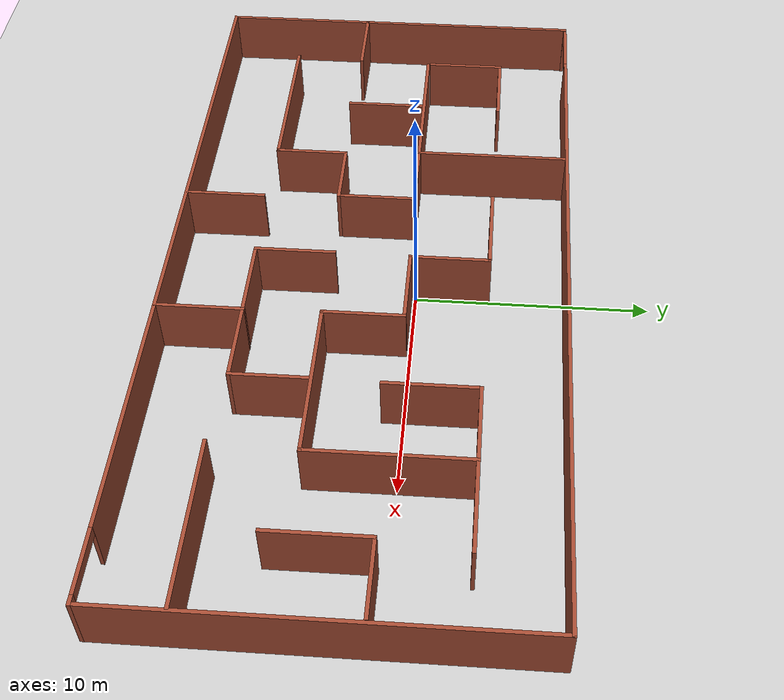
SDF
<sdf version="1.5">
 <world name="default">
  <light name="sun" type="directional">
   <pose>0 0 10 0 -0 0</pose>
   <diffuse>0.8 0.8 0.8 1</diffuse>
   <specular>0.2 0.2 0.2 1</specular>
   <attenuation>
    <range>1000</range>
    <constant>0.9</constant>
    <linear>0.01</linear>
    <quadratic>0.001</quadratic>
   </attenuation>
   <direction>-0.5 0.1 -0.9</direction>
  </light>
  <model name="ground_plane">
   <static>1</static>
   <link name="link">
    <collision name="collision">
     <geometry><plane><normal>0 0 1</normal><size>100 100</size></plane></geometry>
     <surface><friction><ode><mu>100</mu><mu2>50</mu2></ode></friction></surface>
    </collision>
    <visual name="visual">
     <cast_shadows>0</cast_shadows>
     <geometry><plane><normal>0 0 1</normal><size>100 100</size></plane></geometry>
     <material>
      <script><uri>file://media/materials/scripts/gazebo.material</uri><name>Gazebo/Grey</name></script>
     </material>
    </visual>
   </link>
  </model>
  <physics name="default_physics" default="0" type="ode">
   <max_step_size>0.001</max_step_size>
   <real_time_factor>1</real_time_factor>
   <real_time_update_rate>1000</real_time_update_rate>
   <gravity>0 0 -9.8</gravity>
   <magnetic_field>5.5645e-06 2.28758e-05 -4.23884e-05</magnetic_field>
  </physics>
  <scene><ambient>0.4 0.4 0.4 1</ambient><background>0.7 0.7 0.7 1</background><shadows>1</shadows></scene>
  <spherical_coordinates>
   <surface_model>EARTH_WGS84</surface_model>
   <latitude_deg>0</latitude_deg>
   <longitude_deg>0</longitude_deg>
   <elevation>0</elevation>
   <heading_deg>0</heading_deg>
  </spherical_coordinates>
  <model name="Simple_Maze">
   <pose>-0 -2 0 0 -0 0</pose>
   <link name="Wall_1">
    <collision name="Wall_1_Collision">
     <geometry><box><size>17 0.15 2.5</size></box></geometry>
     <pose>0 0 1.25 0 -0 0</pose>
    </collision>
    <visual name="Wall_1_Visual">
     <pose>0 0 1.25 0 -0 0</pose>
     <geometry><box><size>17 0.15 2.5</size></box></geometry>
     <material>
      <script><uri>file://media/materials/scripts/gazebo.material</uri><name>Gazebo/Bricks</name></script>
      <ambient>1 1 1 1</ambient>
     </material>
    </visual>
    <pose>16.8 -0 0 0 0 -1.5708</pose>
   </link>
   <link name="Wall_10">
    <collision name="Wall_10_Collision">
     <geometry><box><size>7.25 0.15 2.5</size></box></geometry>
     <pose>0 0 1.25 0 -0 0</pose>
    </collision>
    <visual name="Wall_10_Visual">
     <pose>0 0 1.25 0 -0 0</pose>
     <geometry><box><size>7.25 0.15 2.5</size></box></geometry>
     <material>
      <script><uri>file://media/materials/scripts/gazebo.material</uri><name>Gazebo/Bricks</name></script>
      <ambient>1 1 1 1</ambient>
     </material>
    </visual>
    <pose>-10.161 -4.76651 0 0 -0 3.14159</pose>
   </link>
   <link name="Wall_16">
    <collision name="Wall_16_Collision">
     <geometry><box><size>3.5 0.15 2.5</size></box></geometry>
     <pose>0 0 1.25 0 -0 0</pose>
    </collision>
    <visual name="Wall_16_Visual">
     <pose>0 0 1.25 0 -0 0</pose>
     <geometry><box><size>3.5 0.15 2.5</size></box></geometry>
     <material>
      <script><uri>file://media/materials/scripts/gazebo.material</uri><name>Gazebo/Bricks</name></script>
      <ambient>1 1 1 1</ambient>
     </material>
    </visual>
    <pose>-3.5354 -6.66942 0 0 -0 1.5708</pose>
   </link>
   <link name="Wall_19">
    <collision name="Wall_19_Collision">
     <geometry><box><size>3.25 0.15 2.5</size></box></geometry>
     <pose>0 0 1.25 0 -0 0</pose>
    </collision>
    <visual name="Wall_19_Visual">
     <pose>0 0 1.25 0 -0 0</pose>
     <geometry><box><size>3.25 0.15 2.5</size></box></geometry>
     <material>
      <script><uri>file://media/materials/scripts/gazebo.material</uri><name>Gazebo/Bricks</name></script>
      <ambient>1 1 1 1</ambient>
     </material>
    </visual>
    <pose>-15.1813 -1.62924 0 0 -0 0</pose>
   </link>
   <link name="Wall_2">
    <pose>0 -8.425 0 0 -0 3.14159</pose>
    <visual name="Wall_2_Visual_0">
     <pose>-16.667 0 1.25 0 -0 0</pose>
     <geometry><box><size>0.416079 0.15 2.5</size></box></geometry>
     <material>
      <script><uri>file://media/materials/scripts/gazebo.material</uri><name>Gazebo/Bricks</name></script>
      <ambient>1 1 1 1</ambient>
     </material>
    </visual>
    <collision name="Wall_2_Collision_0">
     <geometry><box><size>0.416079 0.15 2.5</size></box></geometry>
     <pose>-16.667 0 1.25 0 -0 0</pose>
    </collision>
    <visual name="Wall_2_Visual_1">
     <pose>1.52986 0 1.25 0 -0 0</pose>
     <geometry><box><size>30.6903 0.15 2.5</size></box></geometry>
     <material>
      <script><uri>file://media/materials/scripts/gazebo.material</uri><name>Gazebo/Bricks</name></script>
      <ambient>1 1 1 1</ambient>
     </material>
    </visual>
    <collision name="Wall_2_Collision_1">
     <geometry><box><size>30.6903 0.15 2.5</size></box></geometry>
     <pose>1.52986 0 1.25 0 -0 0</pose>
    </collision>
    <visual name="Wall_2_Visual_2">
     <pose>-15.1371 0 2.25 0 -0 0</pose>
     <geometry><box><size>2.64364 0.15 0.5</size></box></geometry>
     <material>
      <script><uri>file://media/materials/scripts/gazebo.material</uri><name>Gazebo/Bricks</name></script>
      <ambient>1 1 1 1</ambient>
     </material>
    </visual>
    <collision name="Wall_2_Collision_2">
     <geometry><box><size>2.64364 0.15 0.5</size></box></geometry>
     <pose>-15.1371 0 2.25 0 -0 0</pose>
    </collision>
   </link>
   <link name="Wall_21">
    <collision name="Wall_21_Collision">
     <geometry><box><size>3.5 0.15 2.5</size></box></geometry>
     <pose>0 0 1.25 0 -0 0</pose>
    </collision>
    <visual name="Wall_21_Visual">
     <pose>0 0 1.25 0 -0 0</pose>
     <geometry><box><size>3.5 0.15 2.5</size></box></geometry>
     <material>
      <script><uri>file://media/materials/scripts/gazebo.material</uri><name>Gazebo/Bricks</name></script>
      <ambient>1 1 1 1</ambient>
     </material>
    </visual>
    <pose>-11.8153 5.20589 0 0 -0 3.14159</pose>
   </link>
   <link name="Wall_22">
    <collision name="Wall_22_Collision">
     <geometry><box><size>3.5 0.15 2.5</size></box></geometry>
     <pose>0 0 1.25 0 -0 0</pose>
    </collision>
    <visual name="Wall_22_Visual">
     <pose>0 0 1.25 0 -0 0</pose>
     <geometry><box><size>3.5 0.15 2.5</size></box></geometry>
     <material>
      <script><uri>file://media/materials/scripts/gazebo.material</uri><name>Gazebo/Bricks</name></script>
      <ambient>1 1 1 1</ambient>
     </material>
    </visual>
    <pose>-13.4903 3.5309 0 0 0 -1.5708</pose>
   </link>
   <link name="Wall_24">
    <collision name="Wall_24_Collision">
     <geometry><box><size>6.75 0.15 2.5</size></box></geometry>
     <pose>0 0 1.25 0 -0 0</pose>
    </collision>
    <visual name="Wall_24_Visual">
     <pose>0 0 1.25 0 -0 0</pose>
     <geometry><box><size>6.75 0.15 2.5</size></box></geometry>
     <material>
      <script><uri>file://media/materials/scripts/gazebo.material</uri><name>Gazebo/Bricks</name></script>
      <ambient>1 1 1 1</ambient>
     </material>
    </visual>
    <pose>-10.161 1.68349 0 0 -0 3.14159</pose>
   </link>
   <link name="Wall_26">
    <collision name="Wall_26_Collision">
     <geometry><box><size>3.5 0.15 2.5</size></box></geometry>
     <pose>0 0 1.25 0 -0 0</pose>
    </collision>
    <visual name="Wall_26_Visual">
     <pose>0 0 1.25 0 -0 0</pose>
     <geometry><box><size>3.5 0.15 2.5</size></box></geometry>
     <material>
      <script><uri>file://media/materials/scripts/gazebo.material</uri><name>Gazebo/Bricks</name></script>
      <ambient>1 1 1 1</ambient>
     </material>
    </visual>
    <pose>-10.2217 -0.130783 0 0 0 -1.5708</pose>
   </link>
   <link name="Wall_29">
    <collision name="Wall_29_Collision">
     <geometry><box><size>4 0.15 2.5</size></box></geometry>
     <pose>0 0 1.25 0 -0 0</pose>
    </collision>
    <visual name="Wall_29_Visual">
     <pose>0 0 1.25 0 -0 0</pose>
     <geometry><box><size>4 0.15 2.5</size></box></geometry>
     <material>
      <script><uri>file://media/materials/scripts/gazebo.material</uri><name>Gazebo/Bricks</name></script>
      <ambient>1 1 1 1</ambient>
     </material>
    </visual>
    <pose>-2.1125 5.12452 0 0 -0 0</pose>
   </link>
   <link name="Wall_3">
    <collision name="Wall_3_Collision">
     <geometry><box><size>17 0.15 2.5</size></box></geometry>
     <pose>0 0 1.25 0 -0 0</pose>
    </collision>
    <visual name="Wall_3_Visual">
     <pose>0 0 1.25 0 -0 0</pose>
     <geometry><box><size>17 0.15 2.5</size></box></geometry>
     <material>
      <script><uri>file://media/materials/scripts/gazebo.material</uri><name>Gazebo/Bricks</name></script>
      <ambient>1 1 1 1</ambient>
     </material>
    </visual>
    <pose>-16.8 -0 0 0 -0 1.5708</pose>
   </link>
   <link name="Wall_30">
    <collision name="Wall_30_Collision">
     <geometry><box><size>3.5 0.15 2.5</size></box></geometry>
     <pose>0 0 1.25 0 -0 0</pose>
    </collision>
    <visual name="Wall_30_Visual">
     <pose>0 0 1.25 0 -0 0</pose>
     <geometry><box><size>3.5 0.15 2.5</size></box></geometry>
     <material>
      <script><uri>file://media/materials/scripts/gazebo.material</uri><name>Gazebo/Bricks</name></script>
      <ambient>1 1 1 1</ambient>
     </material>
    </visual>
    <pose>-0.187496 3.44952 0 0 0 -1.5708</pose>
   </link>
   <link name="Wall_31">
    <collision name="Wall_31_Collision">
     <geometry><box><size>3.5 0.15 2.5</size></box></geometry>
     <pose>0 0 1.25 0 -0 0</pose>
    </collision>
    <visual name="Wall_31_Visual">
     <pose>0 0 1.25 0 -0 0</pose>
     <geometry><box><size>3.5 0.15 2.5</size></box></geometry>
     <material>
      <script><uri>file://media/materials/scripts/gazebo.material</uri><name>Gazebo/Bricks</name></script>
      <ambient>1 1 1 1</ambient>
     </material>
    </visual>
    <pose>1.4875 1.77452 0 0 -0 0</pose>
   </link>
   <link name="Wall_32">
    <collision name="Wall_32_Collision">
     <geometry><box><size>3.5 0.15 2.5</size></box></geometry>
     <pose>0 0 1.25 0 -0 0</pose>
    </collision>
    <visual name="Wall_32_Visual">
     <pose>0 0 1.25 0 -0 0</pose>
     <geometry><box><size>3.5 0.15 2.5</size></box></geometry>
     <material>
      <script><uri>file://media/materials/scripts/gazebo.material</uri><name>Gazebo/Bricks</name></script>
      <ambient>1 1 1 1</ambient>
     </material>
    </visual>
    <pose>3.1625 0.099524 0 0 0 -1.5708</pose>
   </link>
   <link name="Wall_33">
    <collision name="Wall_33_Collision">
     <geometry><box><size>7 0.15 2.5</size></box></geometry>
     <pose>0 0 1.25 0 -0 0</pose>
    </collision>
    <visual name="Wall_33_Visual">
     <pose>0 0 1.25 0 -0 0</pose>
     <geometry><box><size>7 0.15 2.5</size></box></geometry>
     <material>
      <script><uri>file://media/materials/scripts/gazebo.material</uri><name>Gazebo/Bricks</name></script>
      <ambient>1 1 1 1</ambient>
     </material>
    </visual>
    <pose>6.5875 -1.57548 0 0 -0 0</pose>
   </link>
   <link name="Wall_34">
    <collision name="Wall_34_Collision">
     <geometry><box><size>6.75 0.15 2.5</size></box></geometry>
     <pose>0 0 1.25 0 -0 0</pose>
    </collision>
    <visual name="Wall_34_Visual">
     <pose>0 0 1.25 0 -0 0</pose>
     <geometry><box><size>6.75 0.15 2.5</size></box></geometry>
     <material>
      <script><uri>file://media/materials/scripts/gazebo.material</uri><name>Gazebo/Bricks</name></script>
      <ambient>1 1 1 1</ambient>
     </material>
    </visual>
    <pose>10.0125 1.72452 0 0 -0 1.5708</pose>
   </link>
   <link name="Wall_35">
    <collision name="Wall_35_Collision">
     <geometry><box><size>3.5 0.15 2.5</size></box></geometry>
     <pose>0 0 1.25 0 -0 0</pose>
    </collision>
    <visual name="Wall_35_Visual">
     <pose>0 0 1.25 0 -0 0</pose>
     <geometry><box><size>3.5 0.15 2.5</size></box></geometry>
     <material>
      <script><uri>file://media/materials/scripts/gazebo.material</uri><name>Gazebo/Bricks</name></script>
      <ambient>1 1 1 1</ambient>
     </material>
    </visual>
    <pose>8.3375 5.02452 0 0 -0 3.14159</pose>
   </link>
   <link name="Wall_36">
    <collision name="Wall_36_Collision">
     <geometry><box><size>4 0.15 2.5</size></box></geometry>
     <pose>0 0 1.25 0 -0 0</pose>
    </collision>
    <visual name="Wall_36_Visual">
     <pose>0 0 1.25 0 -0 0</pose>
     <geometry><box><size>4 0.15 2.5</size></box></geometry>
     <material>
      <script><uri>file://media/materials/scripts/gazebo.material</uri><name>Gazebo/Bricks</name></script>
      <ambient>1 1 1 1</ambient>
     </material>
    </visual>
    <pose>6.6625 3.09952 0 0 0 -1.5708</pose>
   </link>
   <link name="Wall_38">
    <collision name="Wall_38_Collision">
     <geometry><box><size>4 0.15 2.5</size></box></geometry>
     <pose>0 0 1.25 0 -0 0</pose>
    </collision>
    <visual name="Wall_38_Visual">
     <pose>0 0 1.25 0 -0 0</pose>
     <geometry><box><size>4 0.15 2.5</size></box></geometry>
     <material>
      <script><uri>file://media/materials/scripts/gazebo.material</uri><name>Gazebo/Bricks</name></script>
      <ambient>1 1 1 1</ambient>
     </material>
    </visual>
    <pose>11.9375 5.02452 0 0 -0 0</pose>
   </link>
   <link name="Wall_41">
    <collision name="Wall_41_Collision">
     <geometry><box><size>3.25 0.15 2.5</size></box></geometry>
     <pose>0 0 1.25 0 -0 0</pose>
    </collision>
    <visual name="Wall_41_Visual">
     <pose>0 0 1.25 0 -0 0</pose>
     <geometry><box><size>3.25 0.15 2.5</size></box></geometry>
     <material>
      <script><uri>file://media/materials/scripts/gazebo.material</uri><name>Gazebo/Bricks</name></script>
      <ambient>1 1 1 1</ambient>
     </material>
    </visual>
    <pose>15.0806 1.54422 0 0 -0 3.14159</pose>
   </link>
   <link name="Wall_42">
    <collision name="Wall_42_Collision">
     <geometry><box><size>4.25 0.15 2.5</size></box></geometry>
     <pose>0 0 1.25 0 -0 0</pose>
    </collision>
    <visual name="Wall_42_Visual">
     <pose>0 0 1.25 0 -0 0</pose>
     <geometry><box><size>4.25 0.15 2.5</size></box></geometry>
     <material>
      <script><uri>file://media/materials/scripts/gazebo.material</uri><name>Gazebo/Bricks</name></script>
      <ambient>1 1 1 1</ambient>
     </material>
    </visual>
    <pose>13.5306 -0.505783 0 0 0 -1.5708</pose>
   </link>
   <link name="Wall_44">
    <collision name="Wall_44_Collision">
     <geometry><box><size>7 0.15 2.5</size></box></geometry>
     <pose>0 0 1.25 0 -0 0</pose>
    </collision>
    <visual name="Wall_44_Visual">
     <pose>0 0 1.25 0 -0 0</pose>
     <geometry><box><size>7 0.15 2.5</size></box></geometry>
     <material>
      <script><uri>file://media/materials/scripts/gazebo.material</uri><name>Gazebo/Bricks</name></script>
      <ambient>1 1 1 1</ambient>
     </material>
    </visual>
    <pose>13.287 -5.12817 0 0 -0 3.14159</pose>
   </link>
   <link name="Wall_46">
    <collision name="Wall_46_Collision">
     <geometry><box><size>3.25 0.15 2.5</size></box></geometry>
     <pose>0 0 1.25 0 -0 0</pose>
    </collision>
    <visual name="Wall_46_Visual">
     <pose>0 0 1.25 0 -0 0</pose>
     <geometry><box><size>3.25 0.15 2.5</size></box></geometry>
     <material>
      <script><uri>file://media/materials/scripts/gazebo.material</uri><name>Gazebo/Bricks</name></script>
      <ambient>1 1 1 1</ambient>
     </material>
    </visual>
    <pose>6.62205 -3.26061 0 0 0 -1.5708</pose>
   </link>
   <link name="Wall_47">
    <collision name="Wall_47_Collision">
     <geometry><box><size>7 0.15 2.5</size></box></geometry>
     <pose>0 0 1.25 0 -0 0</pose>
    </collision>
    <visual name="Wall_47_Visual">
     <pose>0 0 1.25 0 -0 0</pose>
     <geometry><box><size>7 0.15 2.5</size></box></geometry>
     <material>
      <script><uri>file://media/materials/scripts/gazebo.material</uri><name>Gazebo/Bricks</name></script>
      <ambient>1 1 1 1</ambient>
     </material>
    </visual>
    <pose>3.19706 -4.81061 0 0 -0 3.14159</pose>
   </link>
   <link name="Wall_48">
    <collision name="Wall_48_Collision">
     <geometry><box><size>3.5 0.15 2.5</size></box></geometry>
     <pose>0 0 1.25 0 -0 0</pose>
    </collision>
    <visual name="Wall_48_Visual">
     <pose>0 0 1.25 0 -0 0</pose>
     <geometry><box><size>3.5 0.15 2.5</size></box></geometry>
     <material>
      <script><uri>file://media/materials/scripts/gazebo.material</uri><name>Gazebo/Bricks</name></script>
      <ambient>1 1 1 1</ambient>
     </material>
    </visual>
    <pose>-0.227945 -3.13561 0 0 -0 1.5708</pose>
   </link>
   <link name="Wall_5">
    <collision name="Wall_5_Collision">
     <geometry><box><size>6.75 0.15 2.5</size></box></geometry>
     <pose>0 0 1.25 0 -0 0</pose>
    </collision>
    <visual name="Wall_5_Visual">
     <pose>0 0 1.25 0 -0 0</pose>
     <geometry><box><size>6.75 0.15 2.5</size></box></geometry>
     <material>
      <script><uri>file://media/materials/scripts/gazebo.material</uri><name>Gazebo/Bricks</name></script>
      <ambient>1 1 1 1</ambient>
     </material>
    </visual>
    <pose>-6.86098 4.98349 0 0 0 -1.5708</pose>
   </link>
   <link name="Wall_50">
    <collision name="Wall_50_Collision">
     <geometry><box><size>3.75 0.15 2.5</size></box></geometry>
     <pose>0 0 1.25 0 -0 0</pose>
    </collision>
    <visual name="Wall_50_Visual">
     <pose>0 0 1.25 0 -0 0</pose>
     <geometry><box><size>3.75 0.15 2.5</size></box></geometry>
     <material>
      <script><uri>file://media/materials/scripts/gazebo.material</uri><name>Gazebo/Bricks</name></script>
      <ambient>1 1 1 1</ambient>
     </material>
    </visual>
    <pose>3.23508 -6.59091 0 0 0 -1.5708</pose>
   </link>
   <link name="Wall_52">
    <pose>0 8.425 0 0 -0 0</pose>
    <visual name="Wall_52_Visual_0">
     <pose>-16.7685 0 1.25 0 -0 0</pose>
     <geometry><box><size>0.212903 0.15 2.5</size></box></geometry>
     <material>
      <script><uri>file://media/materials/scripts/gazebo.material</uri><name>Gazebo/Bricks</name></script>
      <ambient>1 1 1 1</ambient>
     </material>
    </visual>
    <collision name="Wall_52_Collision_0">
     <geometry><box><size>0.212903 0.15 2.5</size></box></geometry>
     <pose>-16.7685 0 1.25 0 -0 0</pose>
    </collision>
    <visual name="Wall_52_Visual_1">
     <pose>1.45886 0 1.25 0 -0 0</pose>
     <geometry><box><size>30.8323 0.15 2.5</size></box></geometry>
     <material>
      <script><uri>file://media/materials/scripts/gazebo.material</uri><name>Gazebo/Bricks</name></script>
      <ambient>1 1 1 1</ambient>
     </material>
    </visual>
    <collision name="Wall_52_Collision_1">
     <geometry><box><size>30.8323 0.15 2.5</size></box></geometry>
     <pose>1.45886 0 1.25 0 -0 0</pose>
    </collision>
    <visual name="Wall_52_Visual_2">
     <pose>-15.3097 0 2.25 0 -0 0</pose>
     <geometry><box><size>2.70482 0.15 0.5</size></box></geometry>
     <material>
      <script><uri>file://media/materials/scripts/gazebo.material</uri><name>Gazebo/Bricks</name></script>
      <ambient>1 1 1 1</ambient>
     </material>
    </visual>
    <collision name="Wall_52_Collision_2">
     <geometry><box><size>2.70482 0.15 0.5</size></box></geometry>
     <pose>-15.3097 0 2.25 0 -0 0</pose>
    </collision>
   </link>
   <link name="Wall_6">
    <collision name="Wall_6_Collision">
     <geometry><box><size>3.25 0.15 2.5</size></box></geometry>
     <pose>0 0 1.25 0 -0 0</pose>
    </collision>
    <visual name="Wall_6_Visual">
     <pose>0 0 1.25 0 -0 0</pose>
     <geometry><box><size>3.25 0.15 2.5</size></box></geometry>
     <material>
      <script><uri>file://media/materials/scripts/gazebo.material</uri><name>Gazebo/Bricks</name></script>
      <ambient>1 1 1 1</ambient>
     </material>
    </visual>
    <pose>-5.31098 1.68349 0 0 -0 0</pose>
   </link>
   <link name="Wall_7">
    <collision name="Wall_7_Collision">
     <geometry><box><size>3.5 0.15 2.5</size></box></geometry>
     <pose>0 0 1.25 0 -0 0</pose>
    </collision>
    <visual name="Wall_7_Visual">
     <pose>0 0 1.25 0 -0 0</pose>
     <geometry><box><size>3.5 0.15 2.5</size></box></geometry>
     <material>
      <script><uri>file://media/materials/scripts/gazebo.material</uri><name>Gazebo/Bricks</name></script>
      <ambient>1 1 1 1</ambient>
     </material>
    </visual>
    <pose>-3.76098 0.008486 0 0 0 -1.5708</pose>
   </link>
   <link name="Wall_8">
    <collision name="Wall_8_Collision">
     <geometry><box><size>3 0.15 2.5</size></box></geometry>
     <pose>0 0 1.25 0 -0 0</pose>
    </collision>
    <visual name="Wall_8_Visual">
     <pose>0 0 1.25 0 -0 0</pose>
     <geometry><box><size>3 0.15 2.5</size></box></geometry>
     <material>
      <script><uri>file://media/materials/scripts/gazebo.material</uri><name>Gazebo/Bricks</name></script>
      <ambient>1 1 1 1</ambient>
     </material>
    </visual>
    <pose>-5.18598 -1.66651 0 0 -0 3.14159</pose>
   </link>
   <link name="Wall_9">
    <collision name="Wall_9_Collision">
     <geometry><box><size>3.25 0.15 2.5</size></box></geometry>
     <pose>0 0 1.25 0 -0 0</pose>
    </collision>
    <visual name="Wall_9_Visual">
     <pose>0 0 1.25 0 -0 0</pose>
     <geometry><box><size>3.25 0.15 2.5</size></box></geometry>
     <material>
      <script><uri>file://media/materials/scripts/gazebo.material</uri><name>Gazebo/Bricks</name></script>
      <ambient>1 1 1 1</ambient>
     </material>
    </visual>
    <pose>-6.61098 -3.21651 0 0 0 -1.5708</pose>
   </link>
   <static>1</static>
  </model>
 </world>
</sdf>
